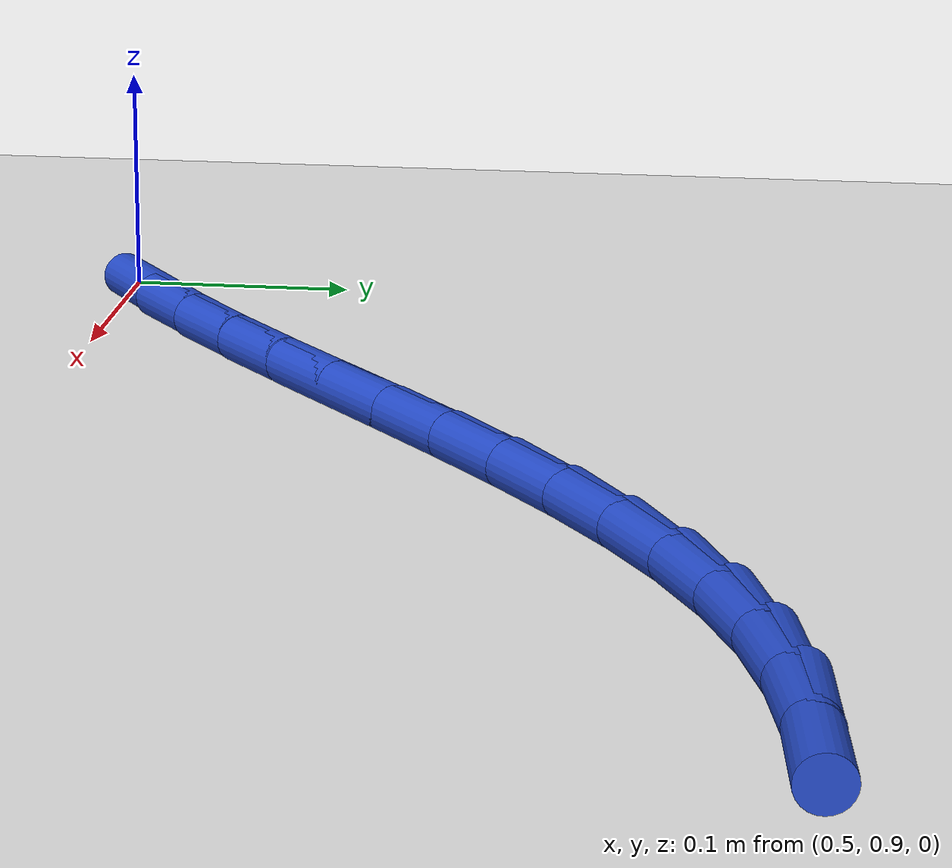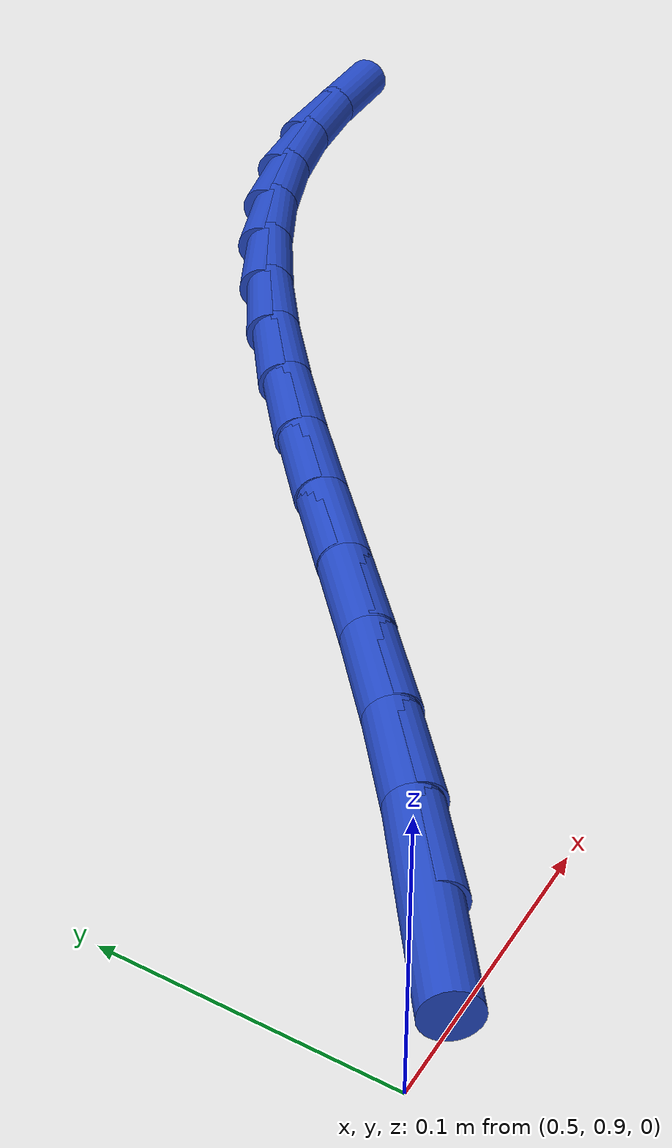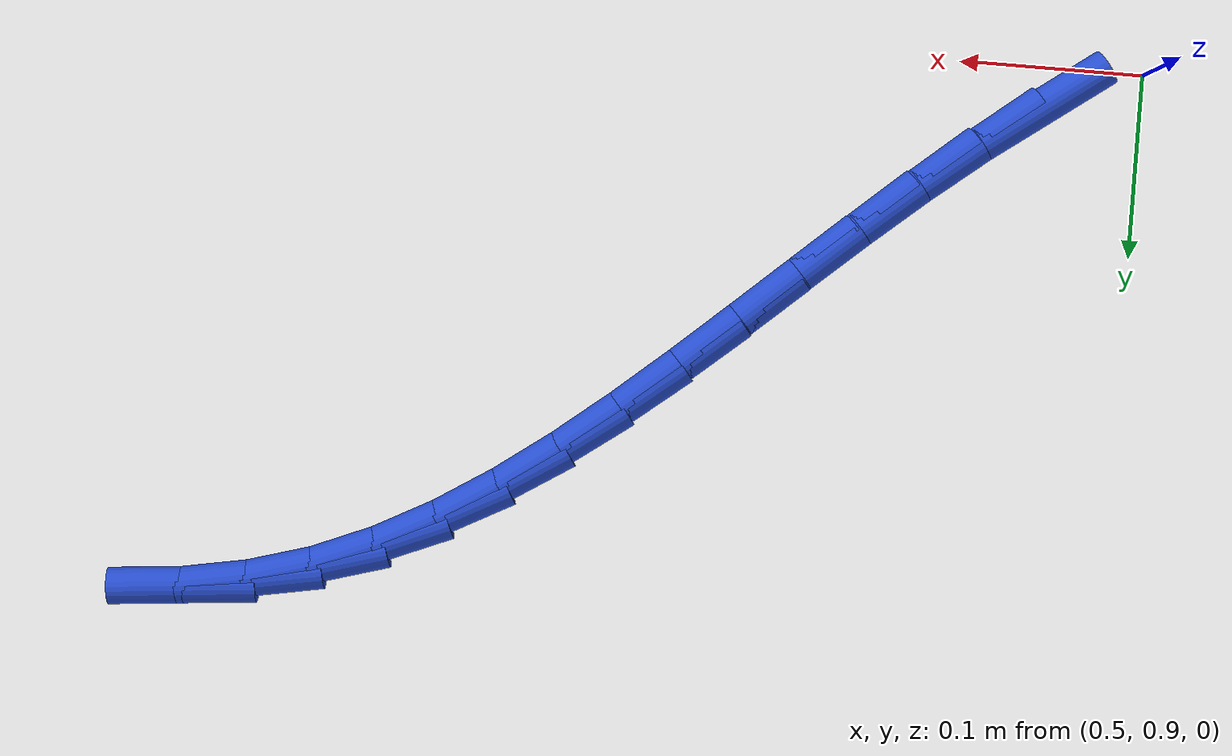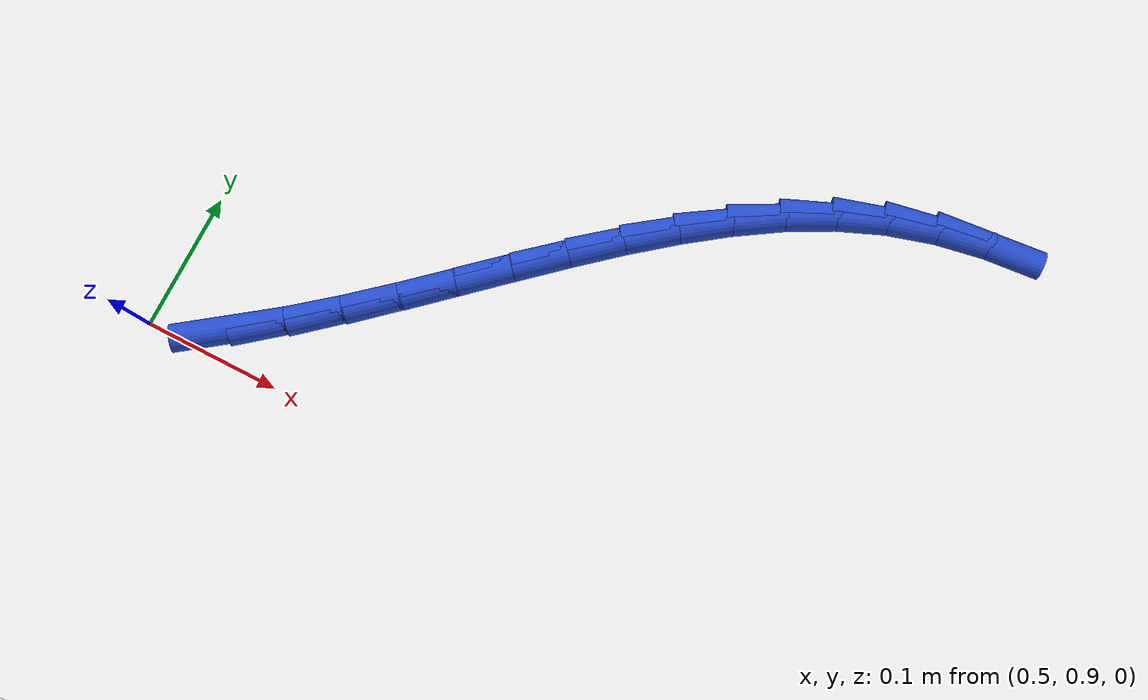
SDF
<sdf version="1.6">
 <world name="default">
  <model name="ground_plane">
   <static>1</static>
   <link name="link">
    <collision name="collision">
     <geometry><plane><normal>0 0 1</normal><size>100 100</size></plane></geometry>
     <surface><friction><ode><mu>100</mu><mu2>50</mu2></ode></friction></surface>
    </collision>
    <visual name="visual">
     <cast_shadows>0</cast_shadows>
     <geometry><plane><normal>0 0 1</normal><size>100 100</size></plane></geometry>
     <material>
      <script><uri>file://media/materials/scripts/gazebo.material</uri><name>Gazebo/WhiteGlow</name></script>
     </material>
    </visual>
   </link>
  </model>
  <model name="line">
   <link name="link_29">
    <pose>0.5537670607159184 0.9213737633393478 0.01 0 1.57 0.6314462953508727</pose>
    <collision name="collision">
     <geometry><cylinder><radius>0.01</radius><length>0.08</length></cylinder></geometry>
    </collision>
    <visual name="visual">
     <material>
      <script><name>Gazebo/Blue</name><uri>file://media/materials/scripts/gazebo.material</uri></script>
     </material>
     <geometry><cylinder><radius>0.01</radius><length>0.08</length></cylinder></geometry>
    </visual>
   </link>
   <link name="link_30">
    <pose>0.5860175296135585 0.9449595705839011 0.01 0 1.57 0.6754819135691965</pose>
    <collision name="collision">
     <geometry><cylinder><radius>0.01</radius><length>0.08</length></cylinder></geometry>
    </collision>
    <visual name="visual">
     <material>
      <script><name>Gazebo/Blue</name><uri>file://media/materials/scripts/gazebo.material</uri></script>
     </material>
     <geometry><cylinder><radius>0.01</radius><length>0.08</length></cylinder></geometry>
    </visual>
   </link>
   <link name="link_31">
    <pose>0.6174359071099166 0.9701324746258959 0.01 0 1.57 0.7065364346487866</pose>
    <collision name="collision">
     <geometry><cylinder><radius>0.01</radius><length>0.08</length></cylinder></geometry>
    </collision>
    <visual name="visual">
     <material>
      <script><name>Gazebo/Blue</name><uri>file://media/materials/scripts/gazebo.material</uri></script>
     </material>
     <geometry><cylinder><radius>0.01</radius><length>0.08</length></cylinder></geometry>
    </visual>
   </link>
   <link name="link_32">
    <pose>0.6482091166260855 0.9963981507615602 0.01 0 1.57 0.7251198170612014</pose>
    <collision name="collision">
     <geometry><cylinder><radius>0.01</radius><length>0.08</length></cylinder></geometry>
    </collision>
    <visual name="visual">
     <material>
      <script><name>Gazebo/Blue</name><uri>file://media/materials/scripts/gazebo.material</uri></script>
     </material>
     <geometry><cylinder><radius>0.01</radius><length>0.08</length></cylinder></geometry>
    </visual>
   </link>
   <link name="link_33">
    <pose>0.6785240815831581 1.0232622742871216 0.01 0 1.57 0.7315073028463244</pose>
    <collision name="collision">
     <geometry><cylinder><radius>0.01</radius><length>0.08</length></cylinder></geometry>
    </collision>
    <visual name="visual">
     <material>
      <script><name>Gazebo/Blue</name><uri>file://media/materials/scripts/gazebo.material</uri></script>
     </material>
     <geometry><cylinder><radius>0.01</radius><length>0.08</length></cylinder></geometry>
    </visual>
   </link>
   <link name="link_34">
    <pose>0.7085677254022268 1.0502305204988078 0.01 0 1.57 0.7256645003087803</pose>
    <collision name="collision">
     <geometry><cylinder><radius>0.01</radius><length>0.08</length></cylinder></geometry>
    </collision>
    <visual name="visual">
     <material>
      <script><name>Gazebo/Blue</name><uri>file://media/materials/scripts/gazebo.material</uri></script>
     </material>
     <geometry><cylinder><radius>0.01</radius><length>0.08</length></cylinder></geometry>
    </visual>
   </link>
   <link name="link_35">
    <pose>0.7385269715043844 1.0768085646928467 0.01 0 1.57 0.707210974886828</pose>
    <collision name="collision">
     <geometry><cylinder><radius>0.01</radius><length>0.08</length></cylinder></geometry>
    </collision>
    <visual name="visual">
     <material>
      <script><name>Gazebo/Blue</name><uri>file://media/materials/scripts/gazebo.material</uri></script>
     </material>
     <geometry><cylinder><radius>0.01</radius><length>0.08</length></cylinder></geometry>
    </visual>
   </link>
   <link name="link_36">
    <pose>0.7685887433107235 1.102502082165466 0.01 0 1.57 0.6754173940089991</pose>
    <collision name="collision">
     <geometry><cylinder><radius>0.01</radius><length>0.08</length></cylinder></geometry>
    </collision>
    <visual name="visual">
     <material>
      <script><name>Gazebo/Blue</name><uri>file://media/materials/scripts/gazebo.material</uri></script>
     </material>
     <geometry><cylinder><radius>0.01</radius><length>0.08</length></cylinder></geometry>
    </visual>
   </link>
   <link name="link_37">
    <pose>0.798939964242337 1.1268167482128935 0.01 0 1.57 0.6292506349643531</pose>
    <collision name="collision">
     <geometry><cylinder><radius>0.01</radius><length>0.08</length></cylinder></geometry>
    </collision>
    <visual name="visual">
     <material>
      <script><name>Gazebo/Blue</name><uri>file://media/materials/scripts/gazebo.material</uri></script>
     </material>
     <geometry><cylinder><radius>0.01</radius><length>0.08</length></cylinder></geometry>
    </visual>
   </link>
   <link name="link_38">
    <pose>0.8297675577203169 1.1492582381313563 0.01 0 1.57 0.5675048182941815</pose>
    <collision name="collision">
     <geometry><cylinder><radius>0.01</radius><length>0.08</length></cylinder></geometry>
    </collision>
    <visual name="visual">
     <material>
      <script><name>Gazebo/Blue</name><uri>file://media/materials/scripts/gazebo.material</uri></script>
     </material>
     <geometry><cylinder><radius>0.01</radius><length>0.08</length></cylinder></geometry>
    </visual>
   </link>
   <link name="link_39">
    <pose>0.8612584471657567 1.1693322272170834 0.01 0 1.57 0.48907998992968993</pose>
    <collision name="collision">
     <geometry><cylinder><radius>0.01</radius><length>0.08</length></cylinder></geometry>
    </collision>
    <visual name="visual">
     <material>
      <script><name>Gazebo/Blue</name><uri>file://media/materials/scripts/gazebo.material</uri></script>
     </material>
     <geometry><cylinder><radius>0.01</radius><length>0.08</length></cylinder></geometry>
    </visual>
   </link>
   <link name="link_40">
    <pose>0.8935995559997485 1.1865443907663011 0.01 0 1.57 0.3934733823606652</pose>
    <collision name="collision">
     <geometry><cylinder><radius>0.01</radius><length>0.08</length></cylinder></geometry>
    </collision>
    <visual name="visual">
     <material>
      <script><name>Gazebo/Blue</name><uri>file://media/materials/scripts/gazebo.material</uri></script>
     </material>
     <geometry><cylinder><radius>0.01</radius><length>0.08</length></cylinder></geometry>
    </visual>
   </link>
   <link name="link_41">
    <pose>0.926977807643385 1.2004004040752383 0.01 0 1.57 0.2845085435991774</pose>
    <collision name="collision">
     <geometry><cylinder><radius>0.01</radius><length>0.08</length></cylinder></geometry>
    </collision>
    <visual name="visual">
     <material>
      <script><name>Gazebo/Blue</name><uri>file://media/materials/scripts/gazebo.material</uri></script>
     </material>
     <geometry><cylinder><radius>0.01</radius><length>0.08</length></cylinder></geometry>
    </visual>
   </link>
   <link name="link_42">
    <pose>0.9615470079958154 1.2105098915231263 0.01 0 1.57 0.18145552733307635</pose>
    <collision name="collision">
     <geometry><cylinder><radius>0.01</radius><length>0.08</length></cylinder></geometry>
    </collision>
    <visual name="visual">
     <material>
      <script><name>Gazebo/Blue</name><uri>file://media/materials/scripts/gazebo.material</uri></script>
     </material>
     <geometry><cylinder><radius>0.01</radius><length>0.08</length></cylinder></geometry>
    </visual>
   </link>
   <link name="link_43">
    <pose>0.9972753432013762 1.2170650996833543 0.01 0 1.57 0.09204527545631257</pose>
    <collision name="collision">
     <geometry><cylinder><radius>0.01</radius><length>0.08</length></cylinder></geometry>
    </collision>
    <visual name="visual">
     <material>
      <script><name>Gazebo/Blue</name><uri>file://media/materials/scripts/gazebo.material</uri></script>
     </material>
     <geometry><cylinder><radius>0.01</radius><length>0.08</length></cylinder></geometry>
    </visual>
   </link>
  </model>
 </world>
</sdf>
